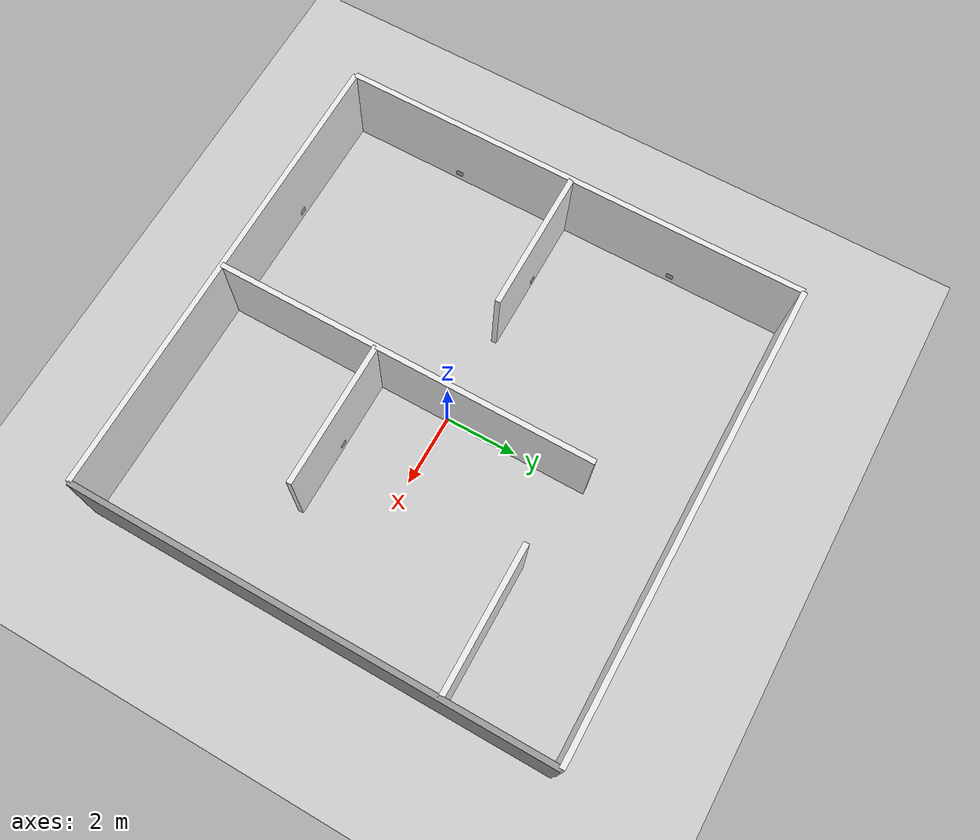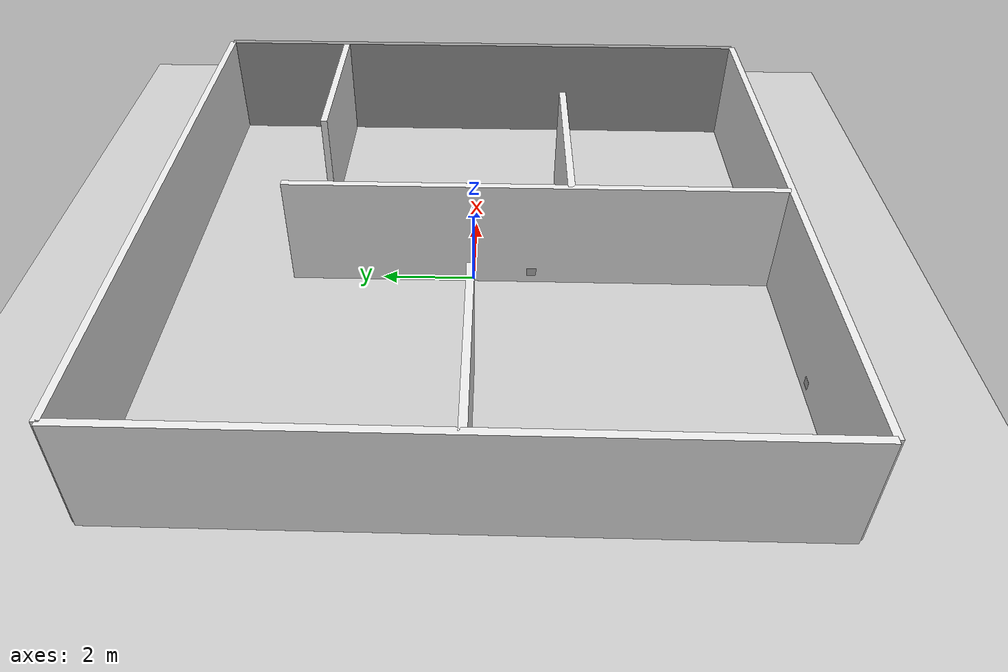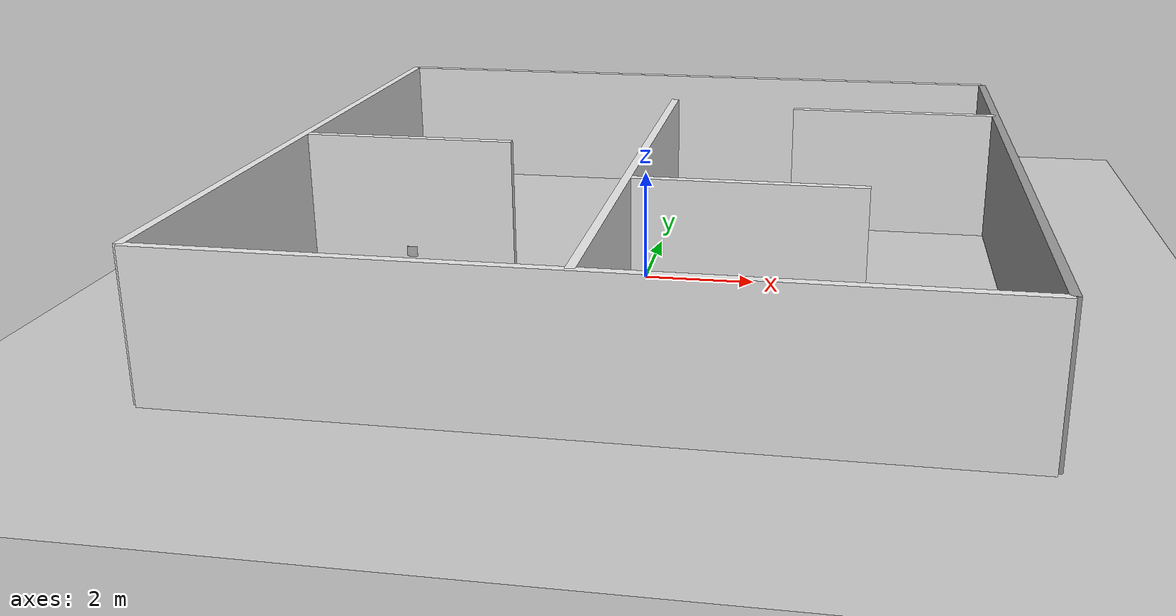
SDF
<sdf version="1.4">
 <world name="testbed">
  <include>
   <uri>model://ground_plane</uri>
   <material>
    <script><uri>file://media/materials/scripts/gazebo.material</uri><name>Gazebo/Orange</name></script>
   </material>
  </include>
  <include><uri>model://sun</uri></include>
  <include><uri>file://testbed/walls</uri></include>
  <include>
   <uri>file://testbed/markers/aruco_marker_1</uri>
   <pose>2 -1.925 0.275 0 0 1.57079632679</pose>
  </include>
  <include><uri>file://testbed/markers/aruco_marker_10</uri><pose>-6.425 3.25 0.275 0 0 0</pose></include>
  <include>
   <uri>file://testbed/markers/aruco_marker_11</uri>
   <pose>-4.5 0.075 0.275 0 0 1.57079632679</pose>
  </include>
  <include>
   <uri>file://testbed/markers/aruco_marker_12</uri>
   <pose>-4.5 -0.075 0.275 0 0 -1.57079632679</pose>
  </include>
  <include><uri>file://testbed/markers/aruco_marker_13</uri><pose>-6.425 -3.25 0.275 0 0 0</pose></include>
  <include>
   <uri>file://testbed/markers/aruco_marker_14</uri>
   <pose>-3.25 -6.425 0.275 0 0 1.57079632679</pose>
  </include>
  <include>
   <uri>file://testbed/markers/aruco_marker_15</uri>
   <pose>-0.075 -1.25 0.275 0 0 3.14159265359</pose>
  </include>
 </world>
</sdf>

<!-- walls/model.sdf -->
<sdf version='1.6'>
  <model name='walls'>
    <pose frame=''>2.39208 2.30864 0 0 -0 0</pose>
    <link name='Wall_1'>
      <collision name='Wall_1_Collision'>
        <geometry>
          <box>
            <size>13 0.15 2.5</size>
          </box>
        </geometry>
        <pose frame=''>0 0 1.25 0 -0 0</pose>
      </collision>
      <visual name='Wall_1_Visual'>
        <pose frame=''>0 0 1.25 0 -0 0</pose>
        <geometry>
          <box>
            <size>13 0.15 2.5</size>
          </box>
        </geometry>
        <material>
          <script>
            <uri>file://media/materials/scripts/gazebo.material</uri>
            <name>Gazebo/White</name>
          </script>
          <ambient>1 1 1 1</ambient>
        </material>
      </visual>
      <pose frame=''>-6.5 -0 0 0 -0 1.57079632679</pose>
    </link>
    <link name='Wall_2'>
      <collision name='Wall_2_Collision'>
        <geometry>
          <box>
            <size>13 0.15 2.5</size>
          </box>
        </geometry>
        <pose frame=''>0 0 1.25 0 -0 0</pose>
      </collision>
      <visual name='Wall_2_Visual'>
        <pose frame=''>0 0 1.25 0 -0 0</pose>
        <geometry>
          <box>
            <size>13 0.15 2.5</size>
          </box>
        </geometry>
        <material>
          <script>
            <uri>file://media/materials/scripts/gazebo.material</uri>
            <name>Gazebo/White</name>
          </script>
          <ambient>1 1 1 1</ambient>
        </material>
      </visual>
      <pose frame=''>0 6.5 0 0 -0 0</pose>
    </link>
    <link name='Wall_3'>
      <collision name='Wall_3_Collision'>
        <geometry>
          <box>
            <size>13 0.15 2.5</size>
          </box>
        </geometry>
        <pose frame=''>0 0 1.25 0 -0 0</pose>
      </collision>
      <visual name='Wall_3_Visual'>
        <pose frame=''>0 0 1.25 0 -0 0</pose>
        <geometry>
          <box>
            <size>13 0.15 2.5</size>
          </box>
        </geometry>
        <material>
          <script>
            <uri>file://media/materials/scripts/gazebo.material</uri>
            <name>Gazebo/Grey</name>
          </script>
          <ambient>1 1 1 1</ambient>
        </material>
      </visual>
      <pose frame=''>6.5 0 0 0 0 -1.57079632679</pose>
    </link>
    <link name='Wall_4'>
      <collision name='Wall_4_Collision'>
        <geometry>
          <box>
            <size>13 0.15 2.5</size>
          </box>
        </geometry>
        <pose frame=''>0 0 1.25 0 -0 0</pose>
      </collision>
      <visual name='Wall_4_Visual'>
        <pose frame=''>0 0 1.25 0 -0 0</pose>
        <geometry>
          <box>
            <size>13 0.15 2.5</size>
          </box>
        </geometry>
        <material>
          <script>
            <uri>file://media/materials/scripts/gazebo.material</uri>
            <name>Gazebo/White</name>
          </script>
          <ambient>1 1 1 1</ambient>
        </material>
      </visual>
      <pose frame=''>0 -6.5 0 0 0 0</pose>
    </link>
    <link name='Wall_5'>
      <collision name='Wall_5_Collision'>
        <geometry>
          <box>
            <size>10.5 0.15 2.5</size>
          </box>
        </geometry>
        <pose frame=''>0 0 1.25 0 -0 0</pose>
      </collision>
      <visual name='Wall_5_Visual'>
        <pose frame=''>0 0 1.25 0 -0 0</pose>
        <geometry>
          <box>
            <size>10.5 0.15 2.5</size>
          </box>
        </geometry>
        <material>
          <script>
            <uri>file://media/materials/scripts/gazebo.material</uri>
            <name>Gazebo/White</name>
          </script>
          <ambient>1 1 1 1</ambient>
        </material>
      </visual>
      <pose frame=''>0 -1.25 0 0 0 -1.57079632679</pose>
    </link>
    <link name='Wall_6'>
      <collision name='Wall_6_Collision'>
        <geometry>
          <box>
            <size>4 0.15 2.5</size>
          </box>
        </geometry>
        <pose frame=''>0 0 1.25 0 -0 0</pose>
      </collision>
      <visual name='Wall_6_Visual'>
        <pose frame=''>0 0 1.25 0 -0 0</pose>
        <geometry>
          <box>
            <size>4 0.15 2.5</size>
          </box>
        </geometry>
        <material>
          <script>
            <uri>file://media/materials/scripts/gazebo.material</uri>
            <name>Gazebo/White</name>
          </script>
          <ambient>1 1 1 1</ambient>
        </material>
      </visual>
      <pose frame=''>-4.5 0 0 0 -0 0</pose>
    </link>
    <link name='Wall_7'>
      <collision name='Wall_7_Collision'>
        <geometry>
          <box>
            <size>4 0.15 2.5</size>
          </box>
        </geometry>
        <pose frame=''>0 0 1.25 0 -0 0</pose>
      </collision>
      <visual name='Wall_7_Visual'>
        <pose frame=''>0 0 1.25 0 -0 0</pose>
        <geometry>
          <box>
            <size>4 0.15 2.5</size>
          </box>
        </geometry>
        <material>
          <script>
            <uri>file://media/materials/scripts/gazebo.material</uri>
            <name>Gazebo/White</name>
          </script>
          <ambient>1 1 1 1</ambient>
        </material>
      </visual>
      <pose frame=''>4.5 3.5 0 0 -0 0</pose>
    </link>
    <link name='Wall_8'>
      <collision name='Wall_8_Collision'>
        <geometry>
          <box>
            <size>4 0.15 2.5</size>
          </box>
        </geometry>
        <pose frame=''>0 0 1.25 0 -0 0</pose>
      </collision>
      <visual name='Wall_8_Visual'>
        <pose frame=''>0 0 1.25 0 -0 0</pose>
        <geometry>
          <box>
            <size>4 0.15 2.5</size>
          </box>
        </geometry>
        <material>
          <script>
            <uri>file://media/materials/scripts/gazebo.material</uri>
            <name>Gazebo/White</name>
          </script>
          <ambient>1 1 1 1</ambient>
        </material>
      </visual>
      <pose frame=''>2 -2 0 0 -0 0</pose>
    </link>
    <static>1</static>
  </model>
</sdf>

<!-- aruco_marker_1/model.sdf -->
<sdf version='1.6'>
  <model name='aruco_marker_1'>
    <link name='link_0'>
      <pose frame=''>0 0 0 0 -0 0</pose>
      <inertial>
        <mass>1</mass>
        <inertia>
          <ixx>0.166667</ixx>
          <ixy>0</ixy>
          <ixz>0</ixz>
          <iyy>0.166667</iyy>
          <iyz>0</iyz>
          <izz>0.166667</izz>
        </inertia>
      </inertial>
      <visual name='visual'>
        <pose frame=''>0 0 0 0 -0 0</pose>
        <geometry>
          <mesh>
            <uri>file://testbed/markers/aruco_marker_1/aruco_marker_1.dae</uri>
            <scale>0.1 0.1 0.1</scale>
          </mesh>
        </geometry>
        <material>
          <lighting>1</lighting>
          <script>
            <uri>file://media/materials/scripts/gazebo.material</uri>
            <name>Gazebo/DepthMapVS</name>
          </script>
          <ambient>0.3 0.3 0.3 1</ambient>
          <diffuse>0.7 0.7 0.7 1</diffuse>
          <specular>0.01 0.01 0.01 1</specular>
          <emissive>0 0 0 1</emissive>
        </material>
        <transparency>0</transparency>
        <cast_shadows>1</cast_shadows>
      </visual>
      <collision name='collision'>
        <laser_retro>0</laser_retro>
        <max_contacts>10</max_contacts>
        <pose frame=''>0 0 0 0 -0 0</pose>
        <geometry>
          <mesh>
            <uri>file://testbed/markers/aruco_marker_1/aruco_marker_1.dae</uri>
            <scale>0.1 0.1 0.1</scale>
          </mesh>
        </geometry>
        <surface>
          <friction>
            <ode>
              <mu>1</mu>
              <mu2>1</mu2>
              <fdir1>0 0 0</fdir1>
              <slip1>0</slip1>
              <slip2>0</slip2>
            </ode>
            <torsional>
              <coefficient>1</coefficient>
              <patch_radius>0</patch_radius>
              <surface_radius>0</surface_radius>
              <use_patch_radius>1</use_patch_radius>
              <ode>
                <slip>0</slip>
              </ode>
            </torsional>
          </friction>
          <bounce>
            <restitution_coefficient>0</restitution_coefficient>
            <threshold>1e+06</threshold>
          </bounce>
          <contact>
            <collide_without_contact>0</collide_without_contact>
            <collide_without_contact_bitmask>1</collide_without_contact_bitmask>
            <collide_bitmask>1</collide_bitmask>
            <ode>
              <soft_cfm>0</soft_cfm>
              <soft_erp>0.2</soft_erp>
              <kp>1e+13</kp>
              <kd>1</kd>
              <max_vel>0.01</max_vel>
              <min_depth>0</min_depth>
            </ode>
            <bullet>
              <split_impulse>1</split_impulse>
              <split_impulse_penetration_threshold>-0.01</split_impulse_penetration_threshold>
              <soft_cfm>0</soft_cfm>
              <soft_erp>0.2</soft_erp>
              <kp>1e+13</kp>
              <kd>1</kd>
            </bullet>
          </contact>
        </surface>
      </collision>
    </link>
    <static>1</static>
    <allow_auto_disable>1</allow_auto_disable>
  </model>
</sdf>

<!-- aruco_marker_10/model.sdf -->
<sdf version='1.6'>
  <model name='aruco_marker_10'>
    <link name='link_0'>
      <pose frame=''>0 0 0 0 -0 0</pose>
      <inertial>
        <mass>1</mass>
        <inertia>
          <ixx>0.166667</ixx>
          <ixy>0</ixy>
          <ixz>0</ixz>
          <iyy>0.166667</iyy>
          <iyz>0</iyz>
          <izz>0.166667</izz>
        </inertia>
      </inertial>
      <visual name='visual'>
        <pose frame=''>0 0 0 0 -0 0</pose>
        <geometry>
          <mesh>
            <uri>file://testbed/markers/aruco_marker_10/aruco_marker_10.dae</uri>
            <scale>0.1 0.1 0.1</scale>
          </mesh>
        </geometry>
        <material>
          <lighting>1</lighting>
          <script>
            <uri>file://media/materials/scripts/gazebo.material</uri>
            <name>Gazebo/DepthMapVS</name>
          </script>
          <ambient>0.3 0.3 0.3 1</ambient>
          <diffuse>0.7 0.7 0.7 1</diffuse>
          <specular>0.01 0.01 0.01 1</specular>
          <emissive>0 0 0 1</emissive>
        </material>
        <transparency>0</transparency>
        <cast_shadows>1</cast_shadows>
      </visual>
      <collision name='collision'>
        <laser_retro>0</laser_retro>
        <max_contacts>10</max_contacts>
        <pose frame=''>0 0 0 0 -0 0</pose>
        <geometry>
          <mesh>
            <uri>file://testbed/markers/aruco_marker_10/aruco_marker_10.dae</uri>
            <scale>0.1 0.1 0.1</scale>
          </mesh>
        </geometry>
        <surface>
          <friction>
            <ode>
              <mu>1</mu>
              <mu2>1</mu2>
              <fdir1>0 0 0</fdir1>
              <slip1>0</slip1>
              <slip2>0</slip2>
            </ode>
            <torsional>
              <coefficient>1</coefficient>
              <patch_radius>0</patch_radius>
              <surface_radius>0</surface_radius>
              <use_patch_radius>1</use_patch_radius>
              <ode>
                <slip>0</slip>
              </ode>
            </torsional>
          </friction>
          <bounce>
            <restitution_coefficient>0</restitution_coefficient>
            <threshold>1e+06</threshold>
          </bounce>
          <contact>
            <collide_without_contact>0</collide_without_contact>
            <collide_without_contact_bitmask>1</collide_without_contact_bitmask>
            <collide_bitmask>1</collide_bitmask>
            <ode>
              <soft_cfm>0</soft_cfm>
              <soft_erp>0.2</soft_erp>
              <kp>1e+13</kp>
              <kd>1</kd>
              <max_vel>0.01</max_vel>
              <min_depth>0</min_depth>
            </ode>
            <bullet>
              <split_impulse>1</split_impulse>
              <split_impulse_penetration_threshold>-0.01</split_impulse_penetration_threshold>
              <soft_cfm>0</soft_cfm>
              <soft_erp>0.2</soft_erp>
              <kp>1e+13</kp>
              <kd>1</kd>
            </bullet>
          </contact>
        </surface>
      </collision>
    </link>
    <static>1</static>
    <allow_auto_disable>1</allow_auto_disable>
  </model>
</sdf>

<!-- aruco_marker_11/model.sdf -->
<sdf version='1.6'>
  <model name='aruco_marker_11'>
    <link name='link_0'>
      <pose frame=''>0 0 0 0 -0 0</pose>
      <inertial>
        <mass>1</mass>
        <inertia>
          <ixx>0.166667</ixx>
          <ixy>0</ixy>
          <ixz>0</ixz>
          <iyy>0.166667</iyy>
          <iyz>0</iyz>
          <izz>0.166667</izz>
        </inertia>
      </inertial>
      <visual name='visual'>
        <pose frame=''>0 0 0 0 -0 0</pose>
        <geometry>
          <mesh>
            <uri>file://testbed/markers/aruco_marker_11/aruco_marker_11.dae</uri>
            <scale>0.1 0.1 0.1</scale>
          </mesh>
        </geometry>
        <material>
          <lighting>1</lighting>
          <script>
            <uri>file://media/materials/scripts/gazebo.material</uri>
            <name>Gazebo/DepthMapVS</name>
          </script>
          <ambient>0.3 0.3 0.3 1</ambient>
          <diffuse>0.7 0.7 0.7 1</diffuse>
          <specular>0.01 0.01 0.01 1</specular>
          <emissive>0 0 0 1</emissive>
        </material>
        <transparency>0</transparency>
        <cast_shadows>1</cast_shadows>
      </visual>
      <collision name='collision'>
        <laser_retro>0</laser_retro>
        <max_contacts>10</max_contacts>
        <pose frame=''>0 0 0 0 -0 0</pose>
        <geometry>
          <mesh>
            <uri>file://testbed/markers/aruco_marker_11/aruco_marker_11.dae</uri>
            <scale>0.1 0.1 0.1</scale>
          </mesh>
        </geometry>
        <surface>
          <friction>
            <ode>
              <mu>1</mu>
              <mu2>1</mu2>
              <fdir1>0 0 0</fdir1>
              <slip1>0</slip1>
              <slip2>0</slip2>
            </ode>
            <torsional>
              <coefficient>1</coefficient>
              <patch_radius>0</patch_radius>
              <surface_radius>0</surface_radius>
              <use_patch_radius>1</use_patch_radius>
              <ode>
                <slip>0</slip>
              </ode>
            </torsional>
          </friction>
          <bounce>
            <restitution_coefficient>0</restitution_coefficient>
            <threshold>1e+06</threshold>
          </bounce>
          <contact>
            <collide_without_contact>0</collide_without_contact>
            <collide_without_contact_bitmask>1</collide_without_contact_bitmask>
            <collide_bitmask>1</collide_bitmask>
            <ode>
              <soft_cfm>0</soft_cfm>
              <soft_erp>0.2</soft_erp>
              <kp>1e+13</kp>
              <kd>1</kd>
              <max_vel>0.01</max_vel>
              <min_depth>0</min_depth>
            </ode>
            <bullet>
              <split_impulse>1</split_impulse>
              <split_impulse_penetration_threshold>-0.01</split_impulse_penetration_threshold>
              <soft_cfm>0</soft_cfm>
              <soft_erp>0.2</soft_erp>
              <kp>1e+13</kp>
              <kd>1</kd>
            </bullet>
          </contact>
        </surface>
      </collision>
    </link>
    <static>1</static>
    <allow_auto_disable>1</allow_auto_disable>
  </model>
</sdf>

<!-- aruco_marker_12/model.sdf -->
<sdf version='1.6'>
  <model name='aruco_marker_12'>
    <link name='link_0'>
      <pose frame=''>0 0 0 0 -0 0</pose>
      <inertial>
        <mass>1</mass>
        <inertia>
          <ixx>0.166667</ixx>
          <ixy>0</ixy>
          <ixz>0</ixz>
          <iyy>0.166667</iyy>
          <iyz>0</iyz>
          <izz>0.166667</izz>
        </inertia>
      </inertial>
      <visual name='visual'>
        <pose frame=''>0 0 0 0 -0 0</pose>
        <geometry>
          <mesh>
            <uri>file://testbed/markers/aruco_marker_12/aruco_marker_12.dae</uri>
            <scale>0.1 0.1 0.1</scale>
          </mesh>
        </geometry>
        <material>
          <lighting>1</lighting>
          <script>
            <uri>file://media/materials/scripts/gazebo.material</uri>
            <name>Gazebo/DepthMapVS</name>
          </script>
          <ambient>0.3 0.3 0.3 1</ambient>
          <diffuse>0.7 0.7 0.7 1</diffuse>
          <specular>0.01 0.01 0.01 1</specular>
          <emissive>0 0 0 1</emissive>
        </material>
        <transparency>0</transparency>
        <cast_shadows>1</cast_shadows>
      </visual>
      <collision name='collision'>
        <laser_retro>0</laser_retro>
        <max_contacts>10</max_contacts>
        <pose frame=''>0 0 0 0 -0 0</pose>
        <geometry>
          <mesh>
            <uri>file://testbed/markers/aruco_marker_12/aruco_marker_12.dae</uri>
            <scale>0.1 0.1 0.1</scale>
          </mesh>
        </geometry>
        <surface>
          <friction>
            <ode>
              <mu>1</mu>
              <mu2>1</mu2>
              <fdir1>0 0 0</fdir1>
              <slip1>0</slip1>
              <slip2>0</slip2>
            </ode>
            <torsional>
              <coefficient>1</coefficient>
              <patch_radius>0</patch_radius>
              <surface_radius>0</surface_radius>
              <use_patch_radius>1</use_patch_radius>
              <ode>
                <slip>0</slip>
              </ode>
            </torsional>
          </friction>
          <bounce>
            <restitution_coefficient>0</restitution_coefficient>
            <threshold>1e+06</threshold>
          </bounce>
          <contact>
            <collide_without_contact>0</collide_without_contact>
            <collide_without_contact_bitmask>1</collide_without_contact_bitmask>
            <collide_bitmask>1</collide_bitmask>
            <ode>
              <soft_cfm>0</soft_cfm>
              <soft_erp>0.2</soft_erp>
              <kp>1e+13</kp>
              <kd>1</kd>
              <max_vel>0.01</max_vel>
              <min_depth>0</min_depth>
            </ode>
            <bullet>
              <split_impulse>1</split_impulse>
              <split_impulse_penetration_threshold>-0.01</split_impulse_penetration_threshold>
              <soft_cfm>0</soft_cfm>
              <soft_erp>0.2</soft_erp>
              <kp>1e+13</kp>
              <kd>1</kd>
            </bullet>
          </contact>
        </surface>
      </collision>
    </link>
    <static>1</static>
    <allow_auto_disable>1</allow_auto_disable>
  </model>
</sdf>

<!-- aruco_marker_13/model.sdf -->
<sdf version='1.6'>
  <model name='aruco_marker_13'>
    <link name='link_0'>
      <pose frame=''>0 0 0 0 -0 0</pose>
      <inertial>
        <mass>1</mass>
        <inertia>
          <ixx>0.166667</ixx>
          <ixy>0</ixy>
          <ixz>0</ixz>
          <iyy>0.166667</iyy>
          <iyz>0</iyz>
          <izz>0.166667</izz>
        </inertia>
      </inertial>
      <visual name='visual'>
        <pose frame=''>0 0 0 0 -0 0</pose>
        <geometry>
          <mesh>
            <uri>file://testbed/markers/aruco_marker_13/aruco_marker_13.dae</uri>
            <scale>0.1 0.1 0.1</scale>
          </mesh>
        </geometry>
        <material>
          <lighting>1</lighting>
          <script>
            <uri>file://media/materials/scripts/gazebo.material</uri>
            <name>Gazebo/DepthMapVS</name>
          </script>
          <ambient>0.3 0.3 0.3 1</ambient>
          <diffuse>0.7 0.7 0.7 1</diffuse>
          <specular>0.01 0.01 0.01 1</specular>
          <emissive>0 0 0 1</emissive>
        </material>
        <transparency>0</transparency>
        <cast_shadows>1</cast_shadows>
      </visual>
      <collision name='collision'>
        <laser_retro>0</laser_retro>
        <max_contacts>10</max_contacts>
        <pose frame=''>0 0 0 0 -0 0</pose>
        <geometry>
          <mesh>
            <uri>file://testbed/markers/aruco_marker_13/aruco_marker_13.dae</uri>
            <scale>0.1 0.1 0.1</scale>
          </mesh>
        </geometry>
        <surface>
          <friction>
            <ode>
              <mu>1</mu>
              <mu2>1</mu2>
              <fdir1>0 0 0</fdir1>
              <slip1>0</slip1>
              <slip2>0</slip2>
            </ode>
            <torsional>
              <coefficient>1</coefficient>
              <patch_radius>0</patch_radius>
              <surface_radius>0</surface_radius>
              <use_patch_radius>1</use_patch_radius>
              <ode>
                <slip>0</slip>
              </ode>
            </torsional>
          </friction>
          <bounce>
            <restitution_coefficient>0</restitution_coefficient>
            <threshold>1e+06</threshold>
          </bounce>
          <contact>
            <collide_without_contact>0</collide_without_contact>
            <collide_without_contact_bitmask>1</collide_without_contact_bitmask>
            <collide_bitmask>1</collide_bitmask>
            <ode>
              <soft_cfm>0</soft_cfm>
              <soft_erp>0.2</soft_erp>
              <kp>1e+13</kp>
              <kd>1</kd>
              <max_vel>0.01</max_vel>
              <min_depth>0</min_depth>
            </ode>
            <bullet>
              <split_impulse>1</split_impulse>
              <split_impulse_penetration_threshold>-0.01</split_impulse_penetration_threshold>
              <soft_cfm>0</soft_cfm>
              <soft_erp>0.2</soft_erp>
              <kp>1e+13</kp>
              <kd>1</kd>
            </bullet>
          </contact>
        </surface>
      </collision>
    </link>
    <static>1</static>
    <allow_auto_disable>1</allow_auto_disable>
  </model>
</sdf>

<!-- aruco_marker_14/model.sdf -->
<sdf version='1.6'>
  <model name='aruco_marker_14'>
    <link name='link_0'>
      <pose frame=''>0 0 0 0 -0 0</pose>
      <inertial>
        <mass>1</mass>
        <inertia>
          <ixx>0.166667</ixx>
          <ixy>0</ixy>
          <ixz>0</ixz>
          <iyy>0.166667</iyy>
          <iyz>0</iyz>
          <izz>0.166667</izz>
        </inertia>
      </inertial>
      <visual name='visual'>
        <pose frame=''>0 0 0 0 -0 0</pose>
        <geometry>
          <mesh>
            <uri>file://testbed/markers/aruco_marker_14/aruco_marker_14.dae</uri>
            <scale>0.1 0.1 0.1</scale>
          </mesh>
        </geometry>
        <material>
          <lighting>1</lighting>
          <script>
            <uri>file://media/materials/scripts/gazebo.material</uri>
            <name>Gazebo/DepthMapVS</name>
          </script>
          <ambient>0.3 0.3 0.3 1</ambient>
          <diffuse>0.7 0.7 0.7 1</diffuse>
          <specular>0.01 0.01 0.01 1</specular>
          <emissive>0 0 0 1</emissive>
        </material>
        <transparency>0</transparency>
        <cast_shadows>1</cast_shadows>
      </visual>
      <collision name='collision'>
        <laser_retro>0</laser_retro>
        <max_contacts>10</max_contacts>
        <pose frame=''>0 0 0 0 -0 0</pose>
        <geometry>
          <mesh>
            <uri>file://testbed/markers/aruco_marker_14/aruco_marker_14.dae</uri>
            <scale>0.1 0.1 0.1</scale>
          </mesh>
        </geometry>
        <surface>
          <friction>
            <ode>
              <mu>1</mu>
              <mu2>1</mu2>
              <fdir1>0 0 0</fdir1>
              <slip1>0</slip1>
              <slip2>0</slip2>
            </ode>
            <torsional>
              <coefficient>1</coefficient>
              <patch_radius>0</patch_radius>
              <surface_radius>0</surface_radius>
              <use_patch_radius>1</use_patch_radius>
              <ode>
                <slip>0</slip>
              </ode>
            </torsional>
          </friction>
          <bounce>
            <restitution_coefficient>0</restitution_coefficient>
            <threshold>1e+06</threshold>
          </bounce>
          <contact>
            <collide_without_contact>0</collide_without_contact>
            <collide_without_contact_bitmask>1</collide_without_contact_bitmask>
            <collide_bitmask>1</collide_bitmask>
            <ode>
              <soft_cfm>0</soft_cfm>
              <soft_erp>0.2</soft_erp>
              <kp>1e+13</kp>
              <kd>1</kd>
              <max_vel>0.01</max_vel>
              <min_depth>0</min_depth>
            </ode>
            <bullet>
              <split_impulse>1</split_impulse>
              <split_impulse_penetration_threshold>-0.01</split_impulse_penetration_threshold>
              <soft_cfm>0</soft_cfm>
              <soft_erp>0.2</soft_erp>
              <kp>1e+13</kp>
              <kd>1</kd>
            </bullet>
          </contact>
        </surface>
      </collision>
    </link>
    <static>1</static>
    <allow_auto_disable>1</allow_auto_disable>
  </model>
</sdf>

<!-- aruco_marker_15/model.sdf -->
<sdf version='1.6'>
  <model name='aruco_marker_15'>
    <link name='link_0'>
      <pose frame=''>0 0 0 0 -0 0</pose>
      <inertial>
        <mass>1</mass>
        <inertia>
          <ixx>0.166667</ixx>
          <ixy>0</ixy>
          <ixz>0</ixz>
          <iyy>0.166667</iyy>
          <iyz>0</iyz>
          <izz>0.166667</izz>
        </inertia>
      </inertial>
      <visual name='visual'>
        <pose frame=''>0 0 0 0 -0 0</pose>
        <geometry>
          <mesh>
            <uri>file://testbed/markers/aruco_marker_15/aruco_marker_15.dae</uri>
            <scale>0.1 0.1 0.1</scale>
          </mesh>
        </geometry>
        <material>
          <lighting>1</lighting>
          <script>
            <uri>file://media/materials/scripts/gazebo.material</uri>
            <name>Gazebo/DepthMapVS</name>
          </script>
          <ambient>0.3 0.3 0.3 1</ambient>
          <diffuse>0.7 0.7 0.7 1</diffuse>
          <specular>0.01 0.01 0.01 1</specular>
          <emissive>0 0 0 1</emissive>
        </material>
        <transparency>0</transparency>
        <cast_shadows>1</cast_shadows>
      </visual>
      <collision name='collision'>
        <laser_retro>0</laser_retro>
        <max_contacts>10</max_contacts>
        <pose frame=''>0 0 0 0 -0 0</pose>
        <geometry>
          <mesh>
            <uri>file://testbed/markers/aruco_marker_15/aruco_marker_15.dae</uri>
            <scale>0.1 0.1 0.1</scale>
          </mesh>
        </geometry>
        <surface>
          <friction>
            <ode>
              <mu>1</mu>
              <mu2>1</mu2>
              <fdir1>0 0 0</fdir1>
              <slip1>0</slip1>
              <slip2>0</slip2>
            </ode>
            <torsional>
              <coefficient>1</coefficient>
              <patch_radius>0</patch_radius>
              <surface_radius>0</surface_radius>
              <use_patch_radius>1</use_patch_radius>
              <ode>
                <slip>0</slip>
              </ode>
            </torsional>
          </friction>
          <bounce>
            <restitution_coefficient>0</restitution_coefficient>
            <threshold>1e+06</threshold>
          </bounce>
          <contact>
            <collide_without_contact>0</collide_without_contact>
            <collide_without_contact_bitmask>1</collide_without_contact_bitmask>
            <collide_bitmask>1</collide_bitmask>
            <ode>
              <soft_cfm>0</soft_cfm>
              <soft_erp>0.2</soft_erp>
              <kp>1e+13</kp>
              <kd>1</kd>
              <max_vel>0.01</max_vel>
              <min_depth>0</min_depth>
            </ode>
            <bullet>
              <split_impulse>1</split_impulse>
              <split_impulse_penetration_threshold>-0.01</split_impulse_penetration_threshold>
              <soft_cfm>0</soft_cfm>
              <soft_erp>0.2</soft_erp>
              <kp>1e+13</kp>
              <kd>1</kd>
            </bullet>
          </contact>
        </surface>
      </collision>
    </link>
    <static>1</static>
    <allow_auto_disable>1</allow_auto_disable>
  </model>
</sdf>
